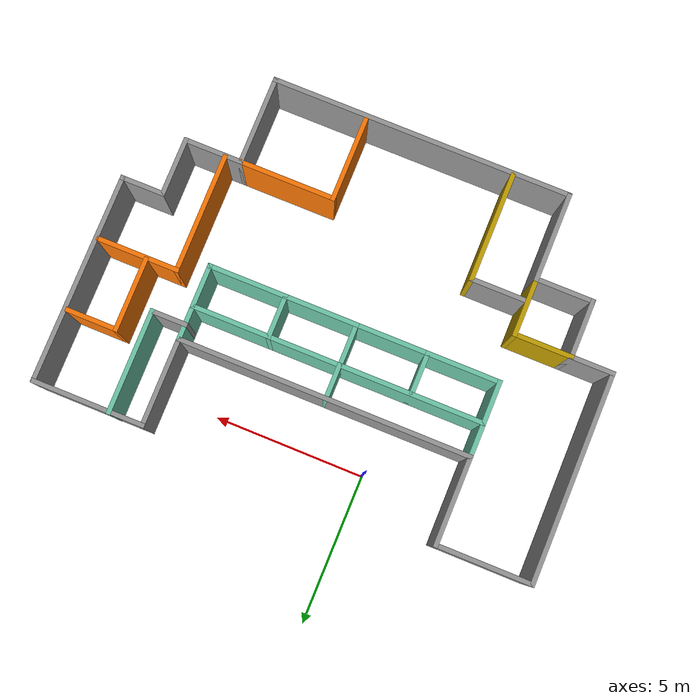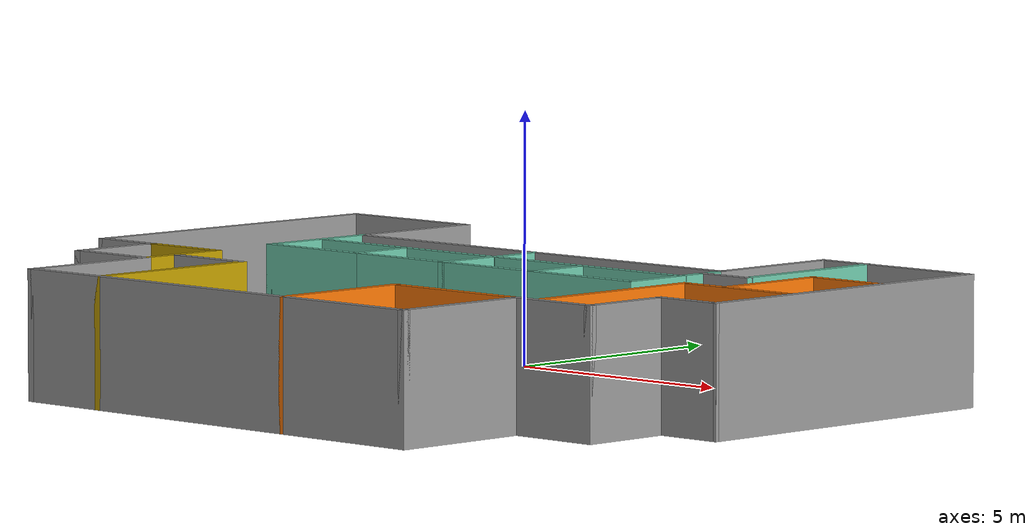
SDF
<?xml version='1.0'?>
<sdf version='1.6'>
  <model name='proj_building'>
    <pose frame=''>2.24401 -4.60787 0 0 -0 0</pose>
    <link name='Wall_0'>
      <collision name='Wall_0_Collision'>
        <geometry>
          <box>
            <size>7 0.15 2.5</size>
          </box>
        </geometry>
        <pose frame=''>0 0 1.25 0 -0 0</pose>
      </collision>
      <visual name='Wall_0_Visual'>
        <pose frame=''>0 0 1.25 0 -0 0</pose>
        <geometry>
          <box>
            <size>7 0.15 2.5</size>
          </box>
        </geometry>
        <material>
          <script>
            <uri>file://media/materials/scripts/gazebo.material</uri>
            <name>Gazebo/Grey</name>
          </script>
          <ambient>0.533333 0.541176 0.521569 1</ambient>
        </material>
        <meta>
          <layer>0</layer>
        </meta>
      </visual>
      <pose frame=''>-8.14029 2.34302 0 0 -0 -1.5708</pose>
    </link>
    <link name='Wall_10'>
      <collision name='Wall_10_Collision'>
        <geometry>
          <box>
            <size>2 0.15 2.5</size>
          </box>
        </geometry>
        <pose frame=''>0 0 1.25 0 -0 0</pose>
      </collision>
      <visual name='Wall_10_Visual'>
        <pose frame=''>0 0 1.25 0 -0 0</pose>
        <geometry>
          <box>
            <size>2 0.15 2.5</size>
          </box>
        </geometry>
        <material>
          <script>
            <uri>file://media/materials/scripts/gazebo.material</uri>
            <name>Gazebo/Grey</name>
          </script>
          <ambient>0.533333 0.541176 0.521569 1</ambient>
        </material>
        <meta>
          <layer>0</layer>
        </meta>
      </visual>
      <pose frame=''>6.75971 -2.00698 0 0 -0 1.5708</pose>
    </link>
    <link name='Wall_11'>
      <collision name='Wall_11_Collision'>
        <geometry>
          <box>
            <size>1.5 0.15 2.5</size>
          </box>
        </geometry>
        <pose frame=''>0 0 1.25 0 -0 0</pose>
      </collision>
      <visual name='Wall_11_Visual'>
        <pose frame=''>0 0 1.25 0 -0 0</pose>
        <geometry>
          <box>
            <size>1.5 0.15 2.5</size>
          </box>
        </geometry>
        <material>
          <script>
            <uri>file://media/materials/scripts/gazebo.material</uri>
            <name>Gazebo/Grey</name>
          </script>
          <ambient>0.533333 0.541176 0.521569 1</ambient>
        </material>
        <meta>
          <layer>0</layer>
        </meta>
      </visual>
      <pose frame=''>7.43471 -1.08198 0 0 -0 0</pose>
    </link>
    <link name='Wall_12'>
      <collision name='Wall_12_Collision'>
        <geometry>
          <box>
            <size>7 0.15 2.5</size>
          </box>
        </geometry>
        <pose frame=''>0 0 1.25 0 -0 0</pose>
      </collision>
      <visual name='Wall_12_Visual'>
        <pose frame=''>0 0 1.25 0 -0 0</pose>
        <geometry>
          <box>
            <size>7 0.15 2.5</size>
          </box>
        </geometry>
        <material>
          <script>
            <uri>file://media/materials/scripts/gazebo.material</uri>
            <name>Gazebo/Grey</name>
          </script>
          <ambient>0.533333 0.541176 0.521569 1</ambient>
        </material>
        <meta>
          <layer>0</layer>
        </meta>
      </visual>
      <pose frame=''>8.12483 2.34302 0 0 -0 1.56638</pose>
    </link>
    <link name='Wall_15'>
      <collision name='Wall_15_Collision'>
        <geometry>
          <box>
            <size>3.25 0.15 2.5</size>
          </box>
        </geometry>
        <pose frame=''>0 0 1.25 0 -0 0</pose>
      </collision>
      <visual name='Wall_15_Visual'>
        <pose frame=''>0 0 1.25 0 -0 0</pose>
        <geometry>
          <box>
            <size>3.25 0.15 2.5</size>
          </box>
        </geometry>
        <material>
          <script>
            <uri>file://media/materials/scripts/gazebo.material</uri>
            <name>Gazebo/Grey</name>
          </script>
          <ambient>0.533333 0.541176 0.521569 1</ambient>
        </material>
        <meta>
          <layer>0</layer>
        </meta>
      </visual>
      <pose frame=''>-6.59029 5.76802 0 0 -0 0</pose>
    </link>
    <link name='Wall_16'>
      <collision name='Wall_16_Collision'>
        <geometry>
          <box>
            <size>3 0.15 2.5</size>
          </box>
        </geometry>
        <pose frame=''>0 0 1.25 0 -0 0</pose>
      </collision>
      <visual name='Wall_16_Visual'>
        <pose frame=''>0 0 1.25 0 -0 0</pose>
        <geometry>
          <box>
            <size>3 0.15 2.5</size>
          </box>
        </geometry>
        <material>
          <script>
            <uri>file://media/materials/scripts/gazebo.material</uri>
            <name>Gazebo/Grey</name>
          </script>
          <ambient>0.533333 0.541176 0.521569 1</ambient>
        </material>
        <meta>
          <layer>0</layer>
        </meta>
      </visual>
      <pose frame=''>-5.04029 4.34302 0 0 -0 -1.5708</pose>
    </link>
    <link name='Wall_17'>
      <collision name='Wall_17_Collision'>
        <geometry>
          <box>
            <size>9.71512 0.15 2.5</size>
          </box>
        </geometry>
        <pose frame=''>0 0 1.25 0 -0 0</pose>
      </collision>
      <visual name='Wall_17_Visual'>
        <pose frame=''>0 0 1.25 0 -0 0</pose>
        <geometry>
          <box>
            <size>9.71512 0.15 2.5</size>
          </box>
        </geometry>
        <material>
          <script>
            <uri>file://media/materials/scripts/gazebo.material</uri>
            <name>Gazebo/Grey</name>
          </script>
          <ambient>0.533333 0.541176 0.521569 1</ambient>
        </material>
        <meta>
          <layer>0</layer>
        </meta>
      </visual>
      <pose frame=''>-0.257727 2.91802 0 0 -0 0</pose>
    </link>
    <link name='Wall_18'>
      <collision name='Wall_18_Collision'>
        <geometry>
          <box>
            <size>3 0.15 2.5</size>
          </box>
        </geometry>
        <pose frame=''>0 0 1.25 0 -0 0</pose>
      </collision>
      <visual name='Wall_18_Visual'>
        <pose frame=''>0 0 1.25 0 -0 0</pose>
        <geometry>
          <box>
            <size>3 0.15 2.5</size>
          </box>
        </geometry>
        <material>
          <script>
            <uri>file://media/materials/scripts/gazebo.material</uri>
            <name>Gazebo/Grey</name>
          </script>
          <ambient>0.533333 0.541176 0.521569 1</ambient>
        </material>
        <meta>
          <layer>0</layer>
        </meta>
      </visual>
      <pose frame=''>4.52484 4.34302 0 0 -0 1.5708</pose>
    </link>
    <link name='Wall_19'>
      <collision name='Wall_19_Collision'>
        <geometry>
          <box>
            <size>3.75 0.15 2.5</size>
          </box>
        </geometry>
        <pose frame=''>0 0 1.25 0 -0 0</pose>
      </collision>
      <visual name='Wall_19_Visual'>
        <pose frame=''>0 0 1.25 0 -0 0</pose>
        <geometry>
          <box>
            <size>3.75 0.15 2.5</size>
          </box>
        </geometry>
        <material>
          <script>
            <uri>file://media/materials/scripts/gazebo.material</uri>
            <name>Gazebo/Grey</name>
          </script>
          <ambient>0.533333 0.541176 0.521569 1</ambient>
        </material>
        <meta>
          <layer>0</layer>
        </meta>
      </visual>
      <pose frame=''>6.32484 5.76802 0 0 -0 0</pose>
    </link>
    <link name='Wall_2'>
      <collision name='Wall_2_Collision'>
        <geometry>
          <box>
            <size>1.5 0.15 2.5</size>
          </box>
        </geometry>
        <pose frame=''>0 0 1.25 0 -0 0</pose>
      </collision>
      <visual name='Wall_2_Visual'>
        <pose frame=''>0 0 1.25 0 -0 0</pose>
        <geometry>
          <box>
            <size>1.5 0.15 2.5</size>
          </box>
        </geometry>
        <material>
          <script>
            <uri>file://media/materials/scripts/gazebo.material</uri>
            <name>Gazebo/Grey</name>
          </script>
          <ambient>0.533333 0.541176 0.521569 1</ambient>
        </material>
        <meta>
          <layer>0</layer>
        </meta>
      </visual>
      <pose frame=''>-7.46529 -1.08198 0 0 -0 0</pose>
    </link>
    <link name='Wall_21'>
      <collision name='Wall_21_Collision'>
        <geometry>
          <box>
            <size>2 0.15 2.5</size>
          </box>
        </geometry>
        <pose frame=''>0 0 1.25 0 -0 0</pose>
      </collision>
      <visual name='Wall_21_Visual'>
        <pose frame=''>0 0 1.25 0 -0 0</pose>
        <geometry>
          <box>
            <size>2 0.15 2.5</size>
          </box>
        </geometry>
        <material>
          <script>
            <uri>file://media/materials/scripts/gazebo.material</uri>
            <name>Gazebo/Grey</name>
          </script>
          <ambient>0.768627 0.627451 0 1</ambient>
        </material>
        <meta>
          <layer>0</layer>
        </meta>
      </visual>
      <pose frame=''>-5.86529 -1.08198 0 0 -0 0</pose>
    </link>
    <link name='Wall_22'>
      <collision name='Wall_22_Collision'>
        <geometry>
          <box>
            <size>2 0.15 2.5</size>
          </box>
        </geometry>
        <pose frame=''>0 0 1.25 0 -0 0</pose>
      </collision>
      <visual name='Wall_22_Visual'>
        <pose frame=''>0 0 1.25 0 -0 0</pose>
        <geometry>
          <box>
            <size>2 0.15 2.5</size>
          </box>
        </geometry>
        <material>
          <script>
            <uri>file://media/materials/scripts/gazebo.material</uri>
            <name>Gazebo/Grey</name>
          </script>
          <ambient>0.768627 0.627451 0 1</ambient>
        </material>
        <meta>
          <layer>0</layer>
        </meta>
      </visual>
      <pose frame=''>-4.94029 -2.00698 0 0 -0 -1.5708</pose>
    </link>
    <link name='Wall_24'>
      <collision name='Wall_24_Collision'>
        <geometry>
          <box>
            <size>3.75 0.15 2.5</size>
          </box>
        </geometry>
        <pose frame=''>0 0 1.25 0 -0 0</pose>
      </collision>
      <visual name='Wall_24_Visual'>
        <pose frame=''>0 0 1.25 0 -0 0</pose>
        <geometry>
          <box>
            <size>3.75 0.15 2.5</size>
          </box>
        </geometry>
        <material>
          <script>
            <uri>file://media/materials/scripts/gazebo.material</uri>
            <name>Gazebo/Grey</name>
          </script>
          <ambient>0.768627 0.627451 0 1</ambient>
        </material>
        <meta>
          <layer>0</layer>
        </meta>
      </visual>
      <pose frame=''>-3.09029 -3.98198 0 0 -0 -1.5708</pose>
    </link>
    <link name='Wall_27'>
      <collision name='Wall_27_Collision'>
        <geometry>
          <box>
            <size>1.25 0.15 2.5</size>
          </box>
        </geometry>
        <pose frame=''>0 0 1.25 0 -0 0</pose>
      </collision>
      <visual name='Wall_27_Visual'>
        <pose frame=''>0 0 1.25 0 -0 0</pose>
        <geometry>
          <box>
            <size>1.25 0.15 2.5</size>
          </box>
        </geometry>
        <material>
          <script>
            <uri>file://media/materials/scripts/gazebo.material</uri>
            <name>Gazebo/Grey</name>
          </script>
          <ambient>0.435294 0.796078 0.67451 1</ambient>
        </material>
        <meta>
          <layer>0</layer>
        </meta>
      </visual>
      <pose frame=''>-5.04029 2.36802 0 0 -0 -1.5708</pose>
    </link>
    <link name='Wall_3'>
      <collision name='Wall_3_Collision'>
        <geometry>
          <box>
            <size>2 0.15 2.5</size>
          </box>
        </geometry>
        <pose frame=''>0 0 1.25 0 -0 0</pose>
      </collision>
      <visual name='Wall_3_Visual'>
        <pose frame=''>0 0 1.25 0 -0 0</pose>
        <geometry>
          <box>
            <size>2 0.15 2.5</size>
          </box>
        </geometry>
        <material>
          <script>
            <uri>file://media/materials/scripts/gazebo.material</uri>
            <name>Gazebo/Grey</name>
          </script>
          <ambient>0.533333 0.541176 0.521569 1</ambient>
        </material>
        <meta>
          <layer>0</layer>
        </meta>
      </visual>
      <pose frame=''>-6.79029 -2.00698 0 0 -0 -1.5708</pose>
    </link>
    <link name='Wall_33'>
      <collision name='Wall_33_Collision'>
        <geometry>
          <box>
            <size>4.86512 0.15 2.5</size>
          </box>
        </geometry>
        <pose frame=''>0 0 1.25 0 -0 0</pose>
      </collision>
      <visual name='Wall_33_Visual'>
        <pose frame=''>0 0 1.25 0 -0 0</pose>
        <geometry>
          <box>
            <size>4.86512 0.15 2.5</size>
          </box>
        </geometry>
        <material>
          <script>
            <uri>file://media/materials/scripts/gazebo.material</uri>
            <name>Gazebo/Grey</name>
          </script>
          <ambient>0.435294 0.796078 0.67451 1</ambient>
        </material>
        <meta>
          <layer>0</layer>
        </meta>
      </visual>
      <pose frame=''>-2.68273 1.81802 0 0 -0 0</pose>
    </link>
    <link name='Wall_34'>
      <collision name='Wall_34_Collision'>
        <geometry>
          <box>
            <size>1.25 0.15 2.5</size>
          </box>
        </geometry>
        <pose frame=''>0 0 1.25 0 -0 0</pose>
      </collision>
      <visual name='Wall_34_Visual'>
        <pose frame=''>0 0 1.25 0 -0 0</pose>
        <geometry>
          <box>
            <size>1.25 0.15 2.5</size>
          </box>
        </geometry>
        <material>
          <script>
            <uri>file://media/materials/scripts/gazebo.material</uri>
            <name>Gazebo/Grey</name>
          </script>
          <ambient>0.435294 0.796078 0.67451 1</ambient>
        </material>
        <meta>
          <layer>0</layer>
        </meta>
      </visual>
      <pose frame=''>-0.325165 2.36802 0 0 -0 1.5708</pose>
    </link>
    <link name='Wall_36'>
      <collision name='Wall_36_Collision'>
        <geometry>
          <box>
            <size>5 0.15 2.5</size>
          </box>
        </geometry>
        <pose frame=''>0 0 1.25 0 -0 0</pose>
      </collision>
      <visual name='Wall_36_Visual'>
        <pose frame=''>0 0 1.25 0 -0 0</pose>
        <geometry>
          <box>
            <size>5 0.15 2.5</size>
          </box>
        </geometry>
        <material>
          <script>
            <uri>file://media/materials/scripts/gazebo.material</uri>
            <name>Gazebo/Grey</name>
          </script>
          <ambient>0.435294 0.796078 0.67451 1</ambient>
        </material>
        <meta>
          <layer>0</layer>
        </meta>
      </visual>
      <pose frame=''>2.09984 1.81802 0 0 -0 0</pose>
    </link>
    <link name='Wall_37'>
      <collision name='Wall_37_Collision'>
        <geometry>
          <box>
            <size>1.25 0.15 2.5</size>
          </box>
        </geometry>
        <pose frame=''>0 0 1.25 0 -0 0</pose>
      </collision>
      <visual name='Wall_37_Visual'>
        <pose frame=''>0 0 1.25 0 -0 0</pose>
        <geometry>
          <box>
            <size>1.25 0.15 2.5</size>
          </box>
        </geometry>
        <material>
          <script>
            <uri>file://media/materials/scripts/gazebo.material</uri>
            <name>Gazebo/Grey</name>
          </script>
          <ambient>0.435294 0.796078 0.67451 1</ambient>
        </material>
        <meta>
          <layer>0</layer>
        </meta>
      </visual>
      <pose frame=''>4.52484 2.36802 0 0 -0 1.5708</pose>
    </link>
    <link name='Wall_4'>
      <collision name='Wall_4_Collision'>
        <geometry>
          <box>
            <size>2 0.15 2.5</size>
          </box>
        </geometry>
        <pose frame=''>0 0 1.25 0 -0 0</pose>
      </collision>
      <visual name='Wall_4_Visual'>
        <pose frame=''>0 0 1.25 0 -0 0</pose>
        <geometry>
          <box>
            <size>2 0.15 2.5</size>
          </box>
        </geometry>
        <material>
          <script>
            <uri>file://media/materials/scripts/gazebo.material</uri>
            <name>Gazebo/Grey</name>
          </script>
          <ambient>0.533333 0.541176 0.521569 1</ambient>
        </material>
        <meta>
          <layer>0</layer>
        </meta>
      </visual>
      <pose frame=''>-5.86529 -2.93198 0 0 -0 0</pose>
    </link>
    <link name='Wall_41'>
      <collision name='Wall_41_Collision'>
        <geometry>
          <box>
            <size>1.5 0.15 2.5</size>
          </box>
        </geometry>
        <pose frame=''>0 0 1.25 0 -0 0</pose>
      </collision>
      <visual name='Wall_41_Visual'>
        <pose frame=''>0 0 1.25 0 -0 0</pose>
        <geometry>
          <box>
            <size>1.5 0.15 2.5</size>
          </box>
        </geometry>
        <material>
          <script>
            <uri>file://media/materials/scripts/gazebo.material</uri>
            <name>Gazebo/Grey</name>
          </script>
          <ambient>0.435294 0.796078 0.67451 1</ambient>
        </material>
        <meta>
          <layer>0</layer>
        </meta>
      </visual>
      <pose frame=''>-5.04029 1.14302 0 0 -0 -1.5708</pose>
    </link>
    <link name='Wall_42'>
      <collision name='Wall_42_Collision'>
        <geometry>
          <box>
            <size>2.5 0.15 2.5</size>
          </box>
        </geometry>
        <pose frame=''>0 0 1.25 0 -0 0</pose>
      </collision>
      <visual name='Wall_42_Visual'>
        <pose frame=''>0 0 1.25 0 -0 0</pose>
        <geometry>
          <box>
            <size>2.5 0.15 2.5</size>
          </box>
        </geometry>
        <material>
          <script>
            <uri>file://media/materials/scripts/gazebo.material</uri>
            <name>Gazebo/Grey</name>
          </script>
          <ambient>0.435294 0.796078 0.67451 1</ambient>
        </material>
        <meta>
          <layer>0</layer>
        </meta>
      </visual>
      <pose frame=''>-3.86529 0.468017 0 0 -0 0</pose>
    </link>
    <link name='Wall_43'>
      <collision name='Wall_43_Collision'>
        <geometry>
          <box>
            <size>1.5 0.15 2.5</size>
          </box>
        </geometry>
        <pose frame=''>0 0 1.25 0 -0 0</pose>
      </collision>
      <visual name='Wall_43_Visual'>
        <pose frame=''>0 0 1.25 0 -0 0</pose>
        <geometry>
          <box>
            <size>1.5 0.15 2.5</size>
          </box>
        </geometry>
        <material>
          <script>
            <uri>file://media/materials/scripts/gazebo.material</uri>
            <name>Gazebo/Grey</name>
          </script>
          <ambient>0.435294 0.796078 0.67451 1</ambient>
        </material>
        <meta>
          <layer>0</layer>
        </meta>
      </visual>
      <pose frame=''>-2.69029 1.14302 0 0 -0 1.5708</pose>
    </link>
    <link name='Wall_45'>
      <collision name='Wall_45_Collision'>
        <geometry>
          <box>
            <size>2.5 0.15 2.5</size>
          </box>
        </geometry>
        <pose frame=''>0 0 1.25 0 -0 0</pose>
      </collision>
      <visual name='Wall_45_Visual'>
        <pose frame=''>0 0 1.25 0 -0 0</pose>
        <geometry>
          <box>
            <size>2.5 0.15 2.5</size>
          </box>
        </geometry>
        <material>
          <script>
            <uri>file://media/materials/scripts/gazebo.material</uri>
            <name>Gazebo/Grey</name>
          </script>
          <ambient>0.435294 0.796078 0.67451 1</ambient>
        </material>
        <meta>
          <layer>0</layer>
        </meta>
      </visual>
      <pose frame=''>-1.51529 0.468017 0 0 -0 0</pose>
    </link>
    <link name='Wall_46'>
      <collision name='Wall_46_Collision'>
        <geometry>
          <box>
            <size>1.5 0.15 2.5</size>
          </box>
        </geometry>
        <pose frame=''>0 0 1.25 0 -0 0</pose>
      </collision>
      <visual name='Wall_46_Visual'>
        <pose frame=''>0 0 1.25 0 -0 0</pose>
        <geometry>
          <box>
            <size>1.5 0.15 2.5</size>
          </box>
        </geometry>
        <material>
          <script>
            <uri>file://media/materials/scripts/gazebo.material</uri>
            <name>Gazebo/Grey</name>
          </script>
          <ambient>0.435294 0.796078 0.67451 1</ambient>
        </material>
        <meta>
          <layer>0</layer>
        </meta>
      </visual>
      <pose frame=''>-0.340288 1.14302 0 0 -0 1.5708</pose>
    </link>
    <link name='Wall_51'>
      <collision name='Wall_51_Collision'>
        <geometry>
          <box>
            <size>2.5 0.15 2.5</size>
          </box>
        </geometry>
        <pose frame=''>0 0 1.25 0 -0 0</pose>
      </collision>
      <visual name='Wall_51_Visual'>
        <pose frame=''>0 0 1.25 0 -0 0</pose>
        <geometry>
          <box>
            <size>2.5 0.15 2.5</size>
          </box>
        </geometry>
        <material>
          <script>
            <uri>file://media/materials/scripts/gazebo.material</uri>
            <name>Gazebo/Grey</name>
          </script>
          <ambient>0.435294 0.796078 0.67451 1</ambient>
        </material>
        <meta>
          <layer>0</layer>
        </meta>
      </visual>
      <pose frame=''>0.834712 0.468017 0 0 -0 0</pose>
    </link>
    <link name='Wall_52'>
      <collision name='Wall_52_Collision'>
        <geometry>
          <box>
            <size>1.5 0.15 2.5</size>
          </box>
        </geometry>
        <pose frame=''>0 0 1.25 0 -0 0</pose>
      </collision>
      <visual name='Wall_52_Visual'>
        <pose frame=''>0 0 1.25 0 -0 0</pose>
        <geometry>
          <box>
            <size>1.5 0.15 2.5</size>
          </box>
        </geometry>
        <material>
          <script>
            <uri>file://media/materials/scripts/gazebo.material</uri>
            <name>Gazebo/Grey</name>
          </script>
          <ambient>0.435294 0.796078 0.67451 1</ambient>
        </material>
        <meta>
          <layer>0</layer>
        </meta>
      </visual>
      <pose frame=''>2.00971 1.14302 0 0 -0 1.5708</pose>
    </link>
    <link name='Wall_54'>
      <collision name='Wall_54_Collision'>
        <geometry>
          <box>
            <size>2.66512 0.15 2.5</size>
          </box>
        </geometry>
        <pose frame=''>0 0 1.25 0 -0 0</pose>
      </collision>
      <visual name='Wall_54_Visual'>
        <pose frame=''>0 0 1.25 0 -0 0</pose>
        <geometry>
          <box>
            <size>2.66512 0.15 2.5</size>
          </box>
        </geometry>
        <material>
          <script>
            <uri>file://media/materials/scripts/gazebo.material</uri>
            <name>Gazebo/Grey</name>
          </script>
          <ambient>0.435294 0.796078 0.67451 1</ambient>
        </material>
        <meta>
          <layer>0</layer>
        </meta>
      </visual>
      <pose frame=''>3.26727 0.468017 0 0 -0 0</pose>
    </link>
    <link name='Wall_55'>
      <collision name='Wall_55_Collision'>
        <geometry>
          <box>
            <size>1.5 0.15 2.5</size>
          </box>
        </geometry>
        <pose frame=''>0 0 1.25 0 -0 0</pose>
      </collision>
      <visual name='Wall_55_Visual'>
        <pose frame=''>0 0 1.25 0 -0 0</pose>
        <geometry>
          <box>
            <size>1.5 0.15 2.5</size>
          </box>
        </geometry>
        <material>
          <script>
            <uri>file://media/materials/scripts/gazebo.material</uri>
            <name>Gazebo/Grey</name>
          </script>
          <ambient>0.435294 0.796078 0.67451 1</ambient>
        </material>
        <meta>
          <layer>0</layer>
        </meta>
      </visual>
      <pose frame=''>4.52484 1.14302 0 0 -0 1.5708</pose>
    </link>
    <link name='Wall_57'>
      <collision name='Wall_57_Collision'>
        <geometry>
          <box>
            <size>3.25 0.15 2.5</size>
          </box>
        </geometry>
        <pose frame=''>0 0 1.25 0 -0 0</pose>
      </collision>
      <visual name='Wall_57_Visual'>
        <pose frame=''>0 0 1.25 0 -0 0</pose>
        <geometry>
          <box>
            <size>3.25 0.15 2.5</size>
          </box>
        </geometry>
        <material>
          <script>
            <uri>file://media/materials/scripts/gazebo.material</uri>
            <name>Gazebo/Grey</name>
          </script>
          <ambient>0.996078 0.47451 0.0196078 1</ambient>
        </material>
        <meta>
          <layer>0</layer>
        </meta>
      </visual>
      <pose frame=''>3.35971 -2.93198 0 0 -0 3.14159</pose>
    </link>
    <link name='Wall_58'>
      <collision name='Wall_58_Collision'>
        <geometry>
          <box>
            <size>3 0.15 2.5</size>
          </box>
        </geometry>
        <pose frame=''>0 0 1.25 0 -0 0</pose>
      </collision>
      <visual name='Wall_58_Visual'>
        <pose frame=''>0 0 1.25 0 -0 0</pose>
        <geometry>
          <box>
            <size>3 0.15 2.5</size>
          </box>
        </geometry>
        <material>
          <script>
            <uri>file://media/materials/scripts/gazebo.material</uri>
            <name>Gazebo/Grey</name>
          </script>
          <ambient>0.996078 0.47451 0.0196078 1</ambient>
        </material>
        <meta>
          <layer>0</layer>
        </meta>
      </visual>
      <pose frame=''>1.80971 -4.35698 0 0 -0 -1.5708</pose>
    </link>
    <link name='Wall_6'>
      <collision name='Wall_6_Collision'>
        <geometry>
          <box>
            <size>3 0.15 2.5</size>
          </box>
        </geometry>
        <pose frame=''>0 0 1.25 0 -0 0</pose>
      </collision>
      <visual name='Wall_6_Visual'>
        <pose frame=''>0 0 1.25 0 -0 0</pose>
        <geometry>
          <box>
            <size>3 0.15 2.5</size>
          </box>
        </geometry>
        <material>
          <script>
            <uri>file://media/materials/scripts/gazebo.material</uri>
            <name>Gazebo/Grey</name>
          </script>
          <ambient>0.533333 0.541176 0.521569 1</ambient>
        </material>
        <meta>
          <layer>0</layer>
        </meta>
      </visual>
      <pose frame=''>-4.94029 -4.35698 0 0 -0 -1.5708</pose>
    </link>
    <link name='Wall_64'>
      <collision name='Wall_64_Collision'>
        <geometry>
          <box>
            <size>4 0.15 2.5</size>
          </box>
        </geometry>
        <pose frame=''>0 0 1.25 0 -0 0</pose>
      </collision>
      <visual name='Wall_64_Visual'>
        <pose frame=''>0 0 1.25 0 -0 0</pose>
        <geometry>
          <box>
            <size>4 0.15 2.5</size>
          </box>
        </geometry>
        <material>
          <script>
            <uri>file://media/materials/scripts/gazebo.material</uri>
            <name>Gazebo/Grey</name>
          </script>
          <ambient>0.996078 0.47451 0.0196078 1</ambient>
        </material>
        <meta>
          <layer>0</layer>
        </meta>
      </visual>
      <pose frame=''>5.42328 -0.958118 0 0 -0 1.5708</pose>
    </link>
    <link name='Wall_65'>
      <collision name='Wall_65_Collision'>
        <geometry>
          <box>
            <size>2.75 0.15 2.5</size>
          </box>
        </geometry>
        <pose frame=''>0 0 1.25 0 -0 0</pose>
      </collision>
      <visual name='Wall_65_Visual'>
        <pose frame=''>0 0 1.25 0 -0 0</pose>
        <geometry>
          <box>
            <size>2.75 0.15 2.5</size>
          </box>
        </geometry>
        <material>
          <script>
            <uri>file://media/materials/scripts/gazebo.material</uri>
            <name>Gazebo/Grey</name>
          </script>
          <ambient>0.996078 0.47451 0.0196078 1</ambient>
        </material>
        <meta>
          <layer>0</layer>
        </meta>
      </visual>
      <pose frame=''>6.72328 0.966882 0 0 -0 0</pose>
    </link>
    <link name='Wall_67'>
      <collision name='Wall_67_Collision'>
        <geometry>
          <box>
            <size>2.5 0.15 2.5</size>
          </box>
        </geometry>
        <pose frame=''>0 0 1.25 0 -0 0</pose>
      </collision>
      <visual name='Wall_67_Visual'>
        <pose frame=''>0 0 1.25 0 -0 0</pose>
        <geometry>
          <box>
            <size>2.5 0.15 2.5</size>
          </box>
        </geometry>
        <material>
          <script>
            <uri>file://media/materials/scripts/gazebo.material</uri>
            <name>Gazebo/Grey</name>
          </script>
          <ambient>0.996078 0.47451 0.0196078 1</ambient>
        </material>
        <meta>
          <layer>0</layer>
        </meta>
      </visual>
      <pose frame=''>6.42896 2.19392 0 0 -0 1.5708</pose>
    </link>
    <link name='Wall_68'>
      <collision name='Wall_68_Collision'>
        <geometry>
          <box>
            <size>1.75 0.15 2.5</size>
          </box>
        </geometry>
        <pose frame=''>0 0 1.25 0 -0 0</pose>
      </collision>
      <visual name='Wall_68_Visual'>
        <pose frame=''>0 0 1.25 0 -0 0</pose>
        <geometry>
          <box>
            <size>1.75 0.15 2.5</size>
          </box>
        </geometry>
        <material>
          <script>
            <uri>file://media/materials/scripts/gazebo.material</uri>
            <name>Gazebo/Grey</name>
          </script>
          <ambient>0.996078 0.47451 0.0196078 1</ambient>
        </material>
        <meta>
          <layer>0</layer>
        </meta>
      </visual>
      <pose frame=''>7.22896 3.36891 0 0 -0 0</pose>
    </link>
    <link name='Wall_7'>
      <collision name='Wall_7_Collision'>
        <geometry>
          <box>
            <size>10 0.15 2.5</size>
          </box>
        </geometry>
        <pose frame=''>0 0 1.25 0 -0 0</pose>
      </collision>
      <visual name='Wall_7_Visual'>
        <pose frame=''>0 0 1.25 0 -0 0</pose>
        <geometry>
          <box>
            <size>10 0.15 2.5</size>
          </box>
        </geometry>
        <material>
          <script>
            <uri>file://media/materials/scripts/gazebo.material</uri>
            <name>Gazebo/Grey</name>
          </script>
          <ambient>0.533333 0.541176 0.521569 1</ambient>
        </material>
        <meta>
          <layer>0</layer>
        </meta>
      </visual>
      <pose frame=''>-0.015288 -5.78198 0 0 -0 0</pose>
    </link>
    <link name='Wall_75'>
      <collision name='Wall_75_Collision'>
        <geometry>
          <box>
            <size>1.25 0.15 2.5</size>
          </box>
        </geometry>
        <pose frame=''>0 0 1.25 0 -0 0</pose>
      </collision>
      <visual name='Wall_75_Visual'>
        <pose frame=''>0 0 1.25 0 -0 0</pose>
        <geometry>
          <box>
            <size>1.25 0.15 2.5</size>
          </box>
        </geometry>
        <material>
          <script>
            <uri>file://media/materials/scripts/gazebo.material</uri>
            <name>Gazebo/Grey</name>
          </script>
          <ambient>0.533333 0.541176 0.521569 1</ambient>
        </material>
        <meta>
          <layer>0</layer>
        </meta>
      </visual>
      <pose frame=''>5.07373 2.43198 0 0 -0 0</pose>
    </link>
    <link name='Wall_76'>
      <collision name='Wall_76_Collision'>
        <geometry>
          <box>
            <size>3.5 0.15 2.5</size>
          </box>
        </geometry>
        <pose frame=''>0 0 1.25 0 -0 0</pose>
      </collision>
      <visual name='Wall_76_Visual'>
        <pose frame=''>0 0 1.25 0 -0 0</pose>
        <geometry>
          <box>
            <size>3.5 0.15 2.5</size>
          </box>
        </geometry>
        <material>
          <script>
            <uri>file://media/materials/scripts/gazebo.material</uri>
            <name>Gazebo/Grey</name>
          </script>
          <ambient>0.435294 0.796078 0.67451 1</ambient>
        </material>
        <meta>
          <layer>0</layer>
        </meta>
      </visual>
      <pose frame=''>5.62373 4.10698 0 0 -0 1.5708</pose>
    </link>
    <link name='Wall_79'>
      <collision name='Wall_79_Collision'>
        <geometry>
          <box>
            <size>2 0.15 2.5</size>
          </box>
        </geometry>
        <pose frame=''>0 0 1.25 0 -0 0</pose>
      </collision>
      <visual name='Wall_79_Visual'>
        <pose frame=''>0 0 1.25 0 -0 0</pose>
        <geometry>
          <box>
            <size>2 0.15 2.5</size>
          </box>
        </geometry>
        <material>
          <script>
            <uri>file://media/materials/scripts/gazebo.material</uri>
            <name>Gazebo/Grey</name>
          </script>
          <ambient>1 1 1 1</ambient>
        </material>
        <meta>
          <layer>0</layer>
        </meta>
      </visual>
      <pose frame=''>-4.01529 -2.18198 0 0 -0 3.14159</pose>
    </link>
    <link name='Wall_8'>
      <collision name='Wall_8_Collision'>
        <geometry>
          <box>
            <size>3 0.15 2.5</size>
          </box>
        </geometry>
        <pose frame=''>0 0 1.25 0 -0 0</pose>
      </collision>
      <visual name='Wall_8_Visual'>
        <pose frame=''>0 0 1.25 0 -0 0</pose>
        <geometry>
          <box>
            <size>3 0.15 2.5</size>
          </box>
        </geometry>
        <material>
          <script>
            <uri>file://media/materials/scripts/gazebo.material</uri>
            <name>Gazebo/Grey</name>
          </script>
          <ambient>0.533333 0.541176 0.521569 1</ambient>
        </material>
        <meta>
          <layer>0</layer>
        </meta>
      </visual>
      <pose frame=''>4.90971 -4.35698 0 0 -0 1.5708</pose>
    </link>
    <link name='Wall_9'>
      <collision name='Wall_9_Collision'>
        <geometry>
          <box>
            <size>2 0.15 2.5</size>
          </box>
        </geometry>
        <pose frame=''>0 0 1.25 0 -0 0</pose>
      </collision>
      <visual name='Wall_9_Visual'>
        <pose frame=''>0 0 1.25 0 -0 0</pose>
        <geometry>
          <box>
            <size>2 0.15 2.5</size>
          </box>
        </geometry>
        <material>
          <script>
            <uri>file://media/materials/scripts/gazebo.material</uri>
            <name>Gazebo/Grey</name>
          </script>
          <ambient>0.533333 0.541176 0.521569 1</ambient>
        </material>
        <meta>
          <layer>0</layer>
        </meta>
      </visual>
      <pose frame=''>5.83471 -2.93198 0 0 -0 0</pose>
    </link>
    <static>1</static>
  </model>
</sdf>
